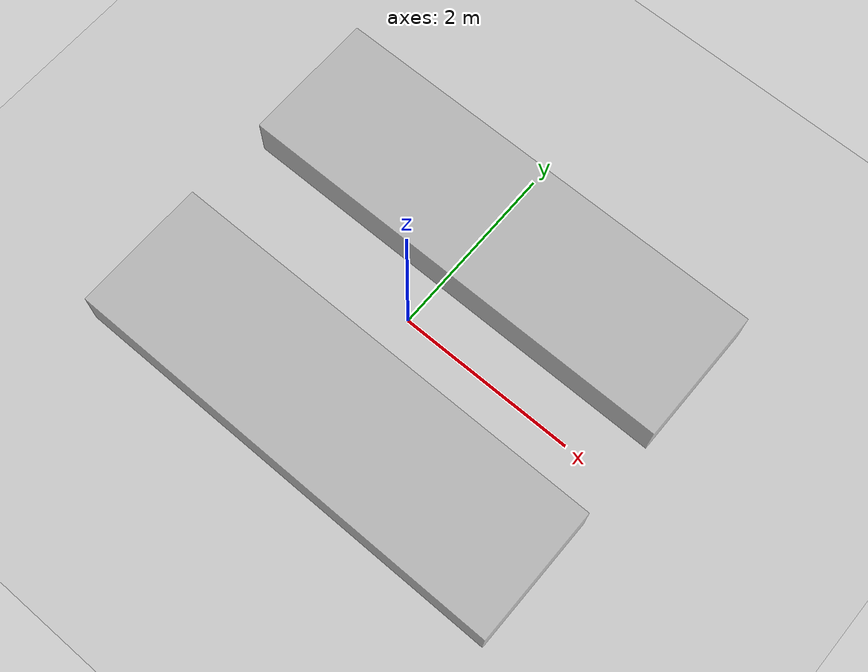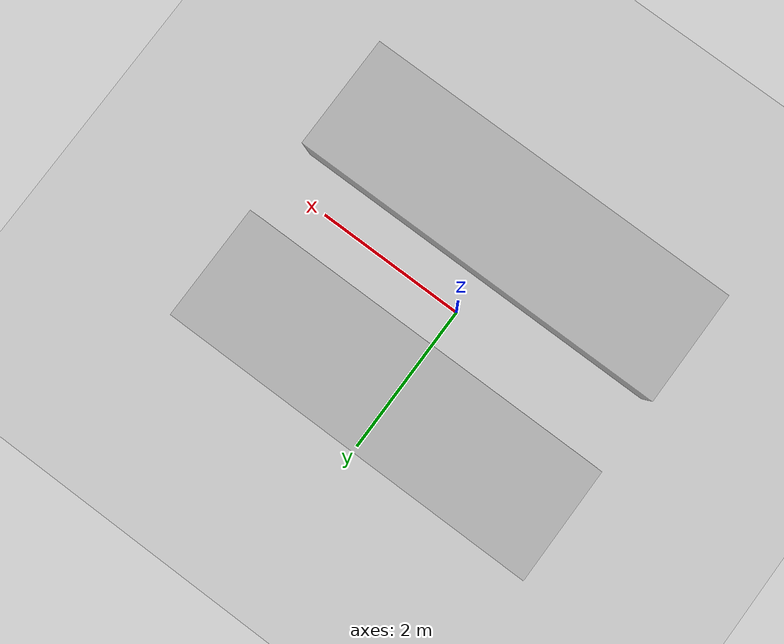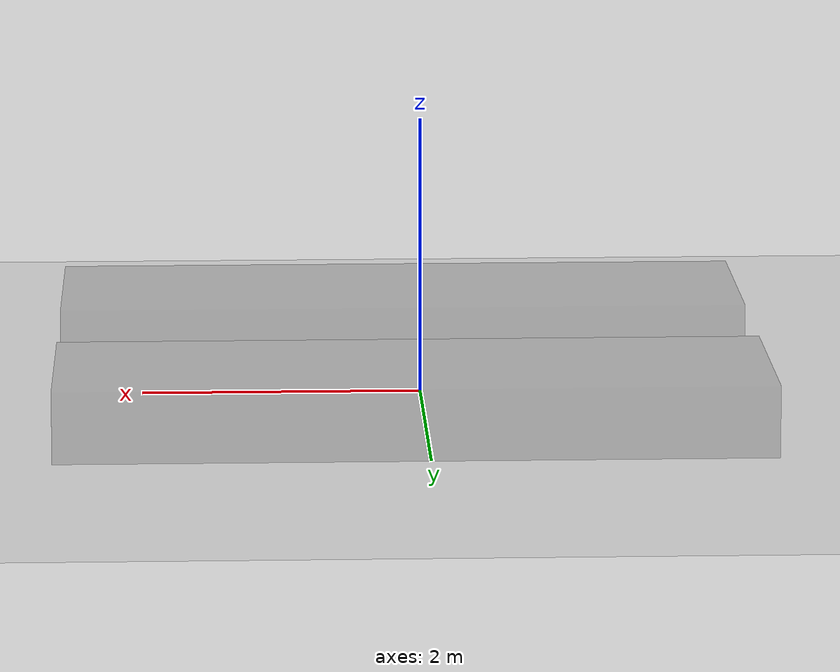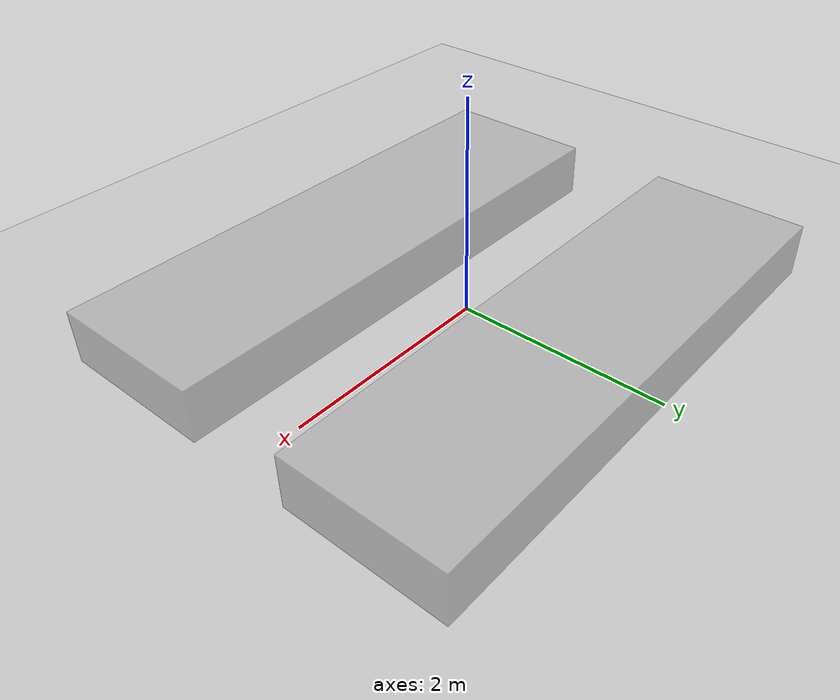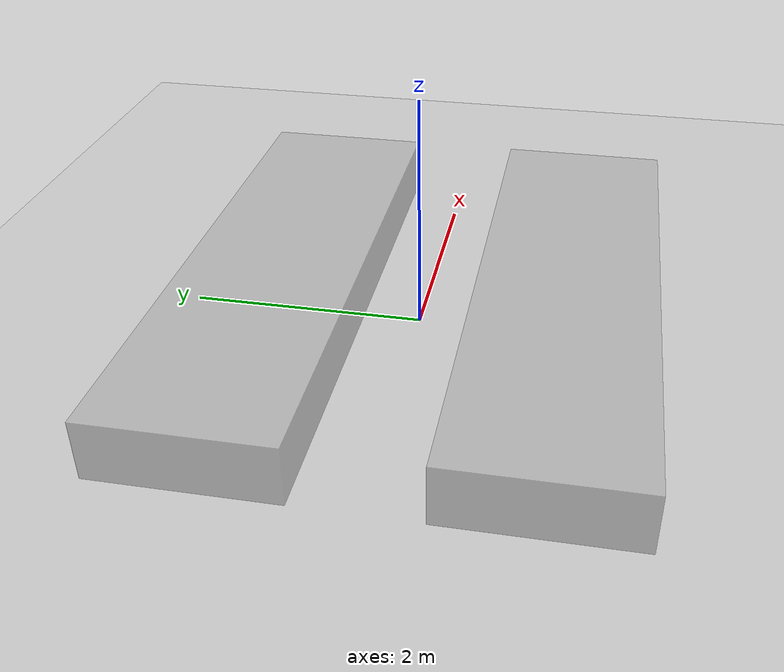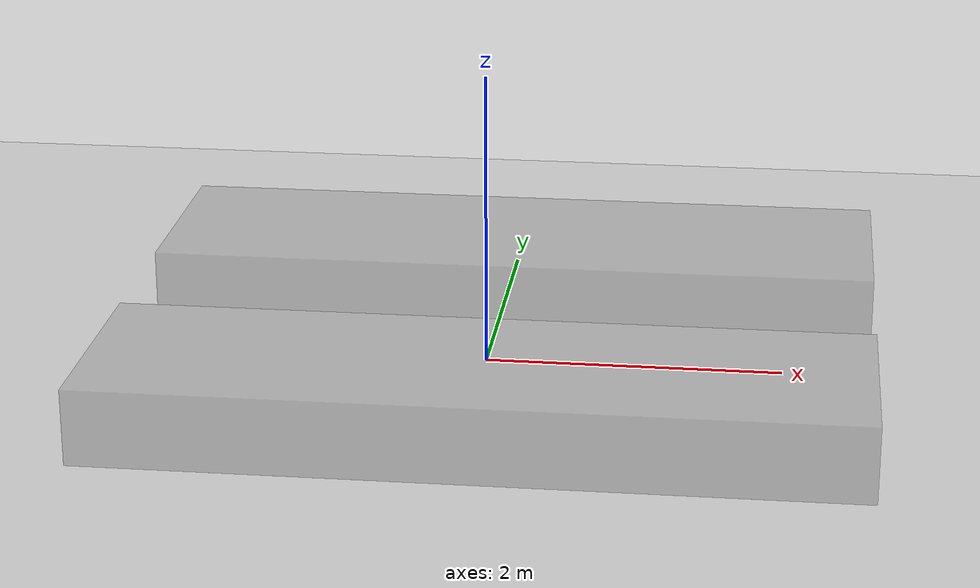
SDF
<?xml version="1.0" ?>
<sdf version="1.2">
  <world name="default">
    <physics type='ode'>
      <gravity>0 0 -9.81</gravity>
      <!-- max step size has to be a multiple of the desired task rate-->
      <max_step_size>0.001</max_step_size>
      <real_time_update_rate>0.0</real_time_update_rate>
    </physics>
    <!-- A global light source -->
    <include>
      <uri>model://sun</uri>
    </include>
    <!-- A ground plane -->
    <include>
      <uri>model://ground_plane</uri>
    </include>
    <include>
     <name>soft ground Rigid</name>
      <uri>model://soft_ground_Rigid</uri>
      <pose>0.1 -1.24 0 0 0 1.5707963</pose>
    </include>
    <include>
      <name>soft ground G</name>
      <uri>model://soft_ground_G</uri>
      <pose>0.1 1.24 0 0 0 1.5707963</pose>
    </include>
  </world>
</sdf>

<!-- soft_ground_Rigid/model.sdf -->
<sdf version="1.2">
  <model name="soft_ground_Rigid">
    <static>true</static>
    <link name="link">
      <collision name="collision">
        <pose>0 0 0 0 0 0</pose>
        <geometry>
          <box>
            <size>1.5 5 1</size>
          </box>
        </geometry>

        <surface>
          <bounce>
            <restitution_coefficient>0.01</restitution_coefficient>
            <threshold>5.0</threshold>
          </bounce>
          <friction>
            <ode>
              <mu>1</mu>
              <mu2>1</mu2>
            </ode>
          </friction>
        </surface>

      </collision>
      <visual name="visual_1">
	<transparency>0.3</transparency>
        <pose>0 0 0 0 0 0</pose>
        <cast_shadows>false</cast_shadows>
        <geometry>
          <box>
            <size>1.5 5 1</size>
          </box>
        </geometry>
        <material>
	  <lighting>false</lighting>
          <script>
            <uri>model://soft_ground_Rigid/materials/scripts</uri>
            <uri>model://soft_ground_Rigid/materials/textures</uri>
            <name>vrc/soft_ground_Rigid</name>
          </script>
        </material>
      </visual>
    </link>
  </model>cc
</sdf>

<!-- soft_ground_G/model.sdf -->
<sdf version="1.2">
  <model name="soft_ground_G">
    <static>true</static>
    <link name="link">
      <collision name="collision">
        <pose>0 0 0 0 0 0</pose>
        <geometry>
          <box>
            <size>1.5 5 1</size>
          </box>
        </geometry>

        <surface>
          <friction>
            <ode>
              <mu>1</mu>
              <mu2>1</mu2>
            </ode>
          </friction>
          <contact>
            <ode>
        <kp>8000.0</kp>  <kd>400.0</kd>  <!-- gain set 1 -->
        <!-- gain set 2 -->
          <!-- kd = 0.3 kp --> <!-- gain set 3 -->
            </ode>
          </contact>
        </surface>

      </collision>
      <visual name="visual_1">
	<transparency>0.3</transparency>
        <pose>0 0 0 0 0 0</pose>
        <cast_shadows>false</cast_shadows>
        <geometry>
          <box>
            <size>1.5 5 1</size>
          </box>
        </geometry>
        <material>
	  <lighting>true</lighting>
          <script>
            <uri>model://soft_ground_G/materials/scripts</uri>
            <uri>model://soft_ground_G/materials/textures</uri>
            <name>vrc/mudG</name>
          </script>
        </material>
      </visual>
    </link>
  </model>cc
</sdf>
